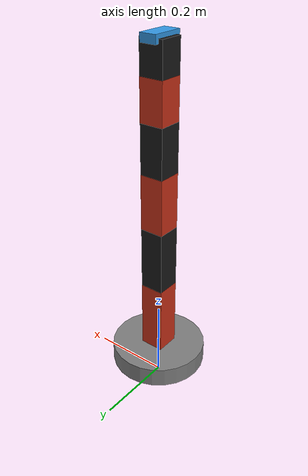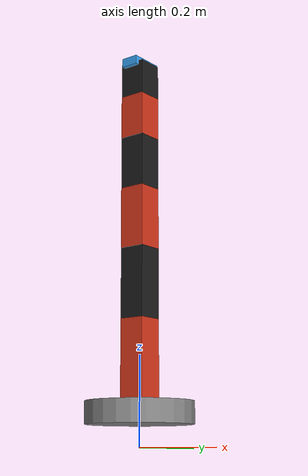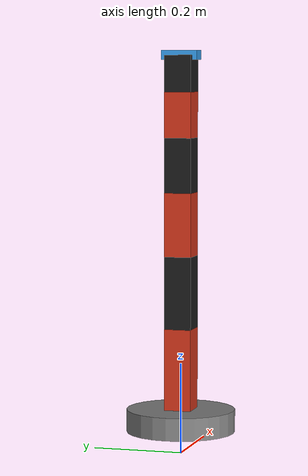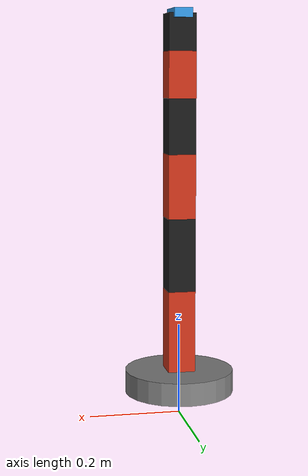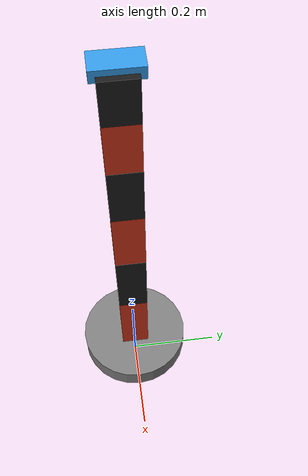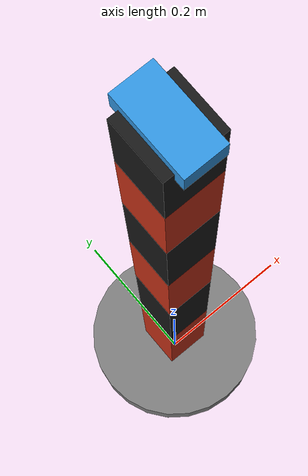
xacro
<?xml version="1.0"?>
<robot name="vla_arm" xmlns:xacro="http://www.ros.org/wiki/xacro">
  <!-- Minimal 7-DoF arm for Gazebo smoke tests. Joint names match vla_smoke_input_node. -->

  <link name="world"/>
  <link name="base_link">
    <visual>
      <geometry><cylinder length="0.05" radius="0.12"/></geometry>
      <origin xyz="0 0 0.025"/>
      <material name="grey"><color rgba="0.5 0.5 0.5 1"/></material>
    </visual>
    <collision>
      <geometry><cylinder length="0.05" radius="0.12"/></geometry>
      <origin xyz="0 0 0.025"/>
    </collision>
    <inertial>
      <mass value="2.0"/>
      <origin xyz="0 0 0.025"/>
      <inertia ixx="0.02" ixy="0" ixz="0" iyy="0.02" iyz="0" izz="0.02"/>
    </inertial>
  </link>

  <joint name="world_to_base" type="fixed">
    <parent link="world"/>
    <child link="base_link"/>
    <origin xyz="0 0 0.05"/>
  </joint>

  <xacro:macro name="arm_link" params="name length color">
    <link name="${name}">
      <visual>
        <geometry><box size="0.06 0.06 ${length}"/></geometry>
        <origin xyz="0 0 ${length/2}"/>
        <material name="${name}_mat"><color rgba="${color}"/></material>
      </visual>
      <collision>
        <geometry><box size="0.06 0.06 ${length}"/></geometry>
        <origin xyz="0 0 ${length/2}"/>
      </collision>
      <inertial>
        <mass value="0.5"/>
        <origin xyz="0 0 ${length/2}"/>
        <inertia ixx="0.01" ixy="0" ixz="0" iyy="0.01" iyz="0" izz="0.01"/>
      </inertial>
    </link>
  </xacro:macro>

  <xacro:arm_link name="link_1" length="0.18" color="0.8 0.2 0.1 1"/>
  <xacro:arm_link name="link_2" length="0.16" color="0.1 0.1 0.1 1"/>
  <xacro:arm_link name="link_3" length="0.14" color="0.8 0.2 0.1 1"/>
  <xacro:arm_link name="link_4" length="0.12" color="0.1 0.1 0.1 1"/>
  <xacro:arm_link name="link_5" length="0.10" color="0.8 0.2 0.1 1"/>
  <xacro:arm_link name="link_6" length="0.08" color="0.1 0.1 0.1 1"/>

  <link name="gripper_link">
    <visual>
      <geometry><box size="0.04 0.08 0.02"/></geometry>
      <material name="gripper_mat"><color rgba="0.2 0.6 0.9 1"/></material>
    </visual>
    <collision>
      <geometry><box size="0.04 0.08 0.02"/></geometry>
    </collision>
    <inertial>
      <mass value="0.1"/>
      <inertia ixx="0.001" ixy="0" ixz="0" iyy="0.001" iyz="0" izz="0.001"/>
    </inertial>
  </link>

  <xacro:macro name="revolute_joint" params="name parent child xyz">
    <joint name="${name}" type="revolute">
      <parent link="${parent}"/>
      <child link="${child}"/>
      <origin xyz="${xyz}" rpy="0 0 0"/>
      <axis xyz="0 1 0"/>
      <limit lower="-2.5" upper="2.5" effort="80" velocity="2.0"/>
      <dynamics damping="0.4" friction="0.1"/>
    </joint>
  </xacro:macro>

  <xacro:revolute_joint name="joint_1" parent="base_link" child="link_1" xyz="0 0 0.05"/>
  <xacro:revolute_joint name="joint_2" parent="link_1" child="link_2" xyz="0 0 0.18"/>
  <xacro:revolute_joint name="joint_3" parent="link_2" child="link_3" xyz="0 0 0.16"/>
  <xacro:revolute_joint name="joint_4" parent="link_3" child="link_4" xyz="0 0 0.14"/>
  <xacro:revolute_joint name="joint_5" parent="link_4" child="link_5" xyz="0 0 0.12"/>
  <xacro:revolute_joint name="joint_6" parent="link_5" child="link_6" xyz="0 0 0.10"/>

  <joint name="gripper" type="prismatic">
    <parent link="link_6"/>
    <child link="gripper_link"/>
    <origin xyz="0 0 0.08"/>
    <axis xyz="0 0 1"/>
    <limit lower="0.0" upper="0.04" effort="20" velocity="0.2"/>
    <dynamics damping="0.2" friction="0.05"/>
  </joint>

  <ros2_control name="GazeboSimSystem" type="system">
    <hardware>
      <plugin>gz_ros2_control/GazeboSimSystem</plugin>
    </hardware>
    <xacro:macro name="position_joint" params="name initial">
      <joint name="${name}">
        <command_interface name="position">
          <param name="min">-2.5</param>
          <param name="max">2.5</param>
        </command_interface>
        <state_interface name="position">
          <param name="initial_value">${initial}</param>
        </state_interface>
        <state_interface name="velocity"/>
        <state_interface name="effort"/>
      </joint>
    </xacro:macro>
    <xacro:position_joint name="joint_1" initial="0.0"/>
    <xacro:position_joint name="joint_2" initial="-0.35"/>
    <xacro:position_joint name="joint_3" initial="0.55"/>
    <xacro:position_joint name="joint_4" initial="-0.2"/>
    <xacro:position_joint name="joint_5" initial="0.0"/>
    <xacro:position_joint name="joint_6" initial="0.25"/>
    <joint name="gripper">
      <command_interface name="position">
        <param name="min">0.0</param>
        <param name="max">0.04</param>
      </command_interface>
      <state_interface name="position">
        <param name="initial_value">0.04</param>
      </state_interface>
      <state_interface name="velocity"/>
      <state_interface name="effort"/>
    </joint>
  </ros2_control>

  <gazebo>
    <plugin filename="gz_ros2_control-system" name="gz_ros2_control::GazeboSimROS2ControlPlugin">
      <parameters>$(find vla_ros2_gz)/config/vla_arm_controllers.yaml</parameters>
    </plugin>
  </gazebo>
</robot>
